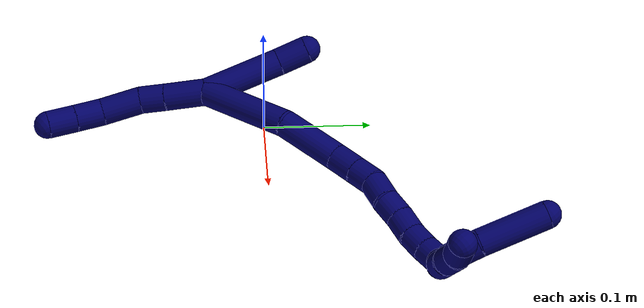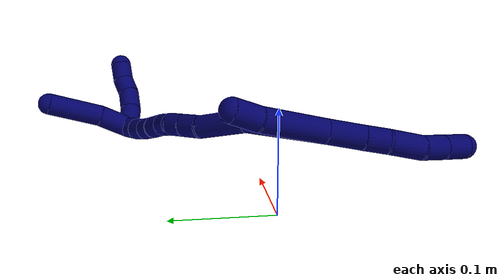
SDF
<sdf version="1.7">
 <world name="default">
  <model name="7">
   <static>0</static>
   <link name="7">
    <collision name="collision-cylinder-e_1_2_8">
     <pose>-0.010019 -0.007122 -0.014497 2.68492 -0.555221 -1.77337</pose>
     <geometry><cylinder><radius>0.0125</radius><length>0.038014</length></cylinder></geometry>
     <surface>
      <friction><ode><mu>1.16</mu><mu2>1.16</mu2><slip1>0</slip1><slip2>0</slip2></ode></friction>
      <contact><ode><kp>1e+06</kp><kd>1</kd><max_vel>0</max_vel><min_depth>0.001</min_depth></ode></contact>
     </surface>
    </collision>
    <visual name="visual-cylinder-e_1_2_8">
     <pose>-0.010019 -0.007122 -0.014497 2.68492 -0.555221 -1.77337</pose>
     <geometry><cylinder><radius>0.0125</radius><length>0.038014</length></cylinder></geometry>
     <material><ambient>0.003922 0 0.403922 1</ambient></material>
    </visual>
    <collision name="collision-cylinder-e_2_8_9">
     <pose>-0.026121 -0.018727 -0.037804 2.67095 -0.551611 -1.73589</pose>
     <geometry><cylinder><radius>0.0125</radius><length>0.023214</length></cylinder></geometry>
     <surface>
      <friction><ode><mu>1.16</mu><mu2>1.16</mu2><slip1>0</slip1><slip2>0</slip2></ode></friction>
      <contact><ode><kp>1e+06</kp><kd>1</kd><max_vel>0</max_vel><min_depth>0.001</min_depth></ode></contact>
     </surface>
    </collision>
    <visual name="visual-cylinder-e_2_8_9">
     <pose>-0.026121 -0.018727 -0.037804 2.67095 -0.551611 -1.73589</pose>
     <geometry><cylinder><radius>0.0125</radius><length>0.023214</length></cylinder></geometry>
     <material><ambient>0.003922 0 0.403922 1</ambient></material>
    </visual>
    <collision name="collision-cylinder-e_3_9_10">
     <pose>-0.038991 -0.02805 -0.063046 2.85514 -0.377252 -1.84761</pose>
     <geometry><cylinder><radius>0.0125</radius><length>0.03685</length></cylinder></geometry>
     <surface>
      <friction><ode><mu>1.16</mu><mu2>1.16</mu2><slip1>0</slip1><slip2>0</slip2></ode></friction>
      <contact><ode><kp>1e+06</kp><kd>1</kd><max_vel>0</max_vel><min_depth>0.001</min_depth></ode></contact>
     </surface>
    </collision>
    <visual name="visual-cylinder-e_3_9_10">
     <pose>-0.038991 -0.02805 -0.063046 2.85514 -0.377252 -1.84761</pose>
     <geometry><cylinder><radius>0.0125</radius><length>0.03685</length></cylinder></geometry>
     <material><ambient>0.003922 0 0.403922 1</ambient></material>
    </visual>
    <collision name="collision-cylinder-e_4_10_11">
     <pose>-0.048307 -0.037487 -0.091284 2.77028 -0.197003 -0.968694</pose>
     <geometry><cylinder><radius>0.0125</radius><length>0.025841</length></cylinder></geometry>
     <surface>
      <friction><ode><mu>1.16</mu><mu2>1.16</mu2><slip1>0</slip1><slip2>0</slip2></ode></friction>
      <contact><ode><kp>1e+06</kp><kd>1</kd><max_vel>0</max_vel><min_depth>0.001</min_depth></ode></contact>
     </surface>
    </collision>
    <visual name="visual-cylinder-e_4_10_11">
     <pose>-0.048307 -0.037487 -0.091284 2.77028 -0.197003 -0.968694</pose>
     <geometry><cylinder><radius>0.0125</radius><length>0.025841</length></cylinder></geometry>
     <material><ambient>0.003922 0 0.403922 1</ambient></material>
    </visual>
    <collision name="collision-cylinder-e_5_11_6">
     <pose>-0.05333 -0.046853 -0.11497 2.75989 -0.192417 -0.926513</pose>
     <geometry><cylinder><radius>0.0125</radius><length>0.026082</length></cylinder></geometry>
     <surface>
      <friction><ode><mu>1.16</mu><mu2>1.16</mu2><slip1>0</slip1><slip2>0</slip2></ode></friction>
      <contact><ode><kp>1e+06</kp><kd>1</kd><max_vel>0</max_vel><min_depth>0.001</min_depth></ode></contact>
     </surface>
    </collision>
    <visual name="visual-cylinder-e_5_11_6">
     <pose>-0.05333 -0.046853 -0.11497 2.75989 -0.192417 -0.926513</pose>
     <geometry><cylinder><radius>0.0125</radius><length>0.026082</length></cylinder></geometry>
     <material><ambient>0.003922 0 0.403922 1</ambient></material>
    </visual>
    <collision name="collision-cylinder-e_1_2_12">
     <pose>0.008997 0.007021 0.034021 -0.203508 0.25343 -0.026015</pose>
     <geometry><cylinder><radius>0.0125</radius><length>0.071767</length></cylinder></geometry>
     <surface>
      <friction><ode><mu>1.16</mu><mu2>1.16</mu2><slip1>0</slip1><slip2>0</slip2></ode></friction>
      <contact><ode><kp>1e+06</kp><kd>1</kd><max_vel>0</max_vel><min_depth>0.001</min_depth></ode></contact>
     </surface>
    </collision>
    <visual name="visual-cylinder-e_1_2_12">
     <pose>0.008997 0.007021 0.034021 -0.203508 0.25343 -0.026015</pose>
     <geometry><cylinder><radius>0.0125</radius><length>0.071767</length></cylinder></geometry>
     <material><ambient>0.003922 0 0.403922 1</ambient></material>
    </visual>
    <collision name="collision-cylinder-e_2_12_5">
     <pose>0.023485 0.015988 0.080899 -0.150237 0.399509 -0.030471</pose>
     <geometry><cylinder><radius>0.0125</radius><length>0.028233</length></cylinder></geometry>
     <surface>
      <friction><ode><mu>1.16</mu><mu2>1.16</mu2><slip1>0</slip1><slip2>0</slip2></ode></friction>
      <contact><ode><kp>1e+06</kp><kd>1</kd><max_vel>0</max_vel><min_depth>0.001</min_depth></ode></contact>
     </surface>
    </collision>
    <visual name="visual-cylinder-e_2_12_5">
     <pose>0.023485 0.015988 0.080899 -0.150237 0.399509 -0.030471</pose>
     <geometry><cylinder><radius>0.0125</radius><length>0.028233</length></cylinder></geometry>
     <material><ambient>0.003922 0 0.403922 1</ambient></material>
    </visual>
    <collision name="collision-cylinder-e_1_2_13">
     <pose>0.035063 0.02491 0.011499 -1.13833 0.906828 -0.604407</pose>
     <geometry><cylinder><radius>0.0125</radius><length>0.089042</length></cylinder></geometry>
     <surface>
      <friction><ode><mu>1.16</mu><mu2>1.16</mu2><slip1>0</slip1><slip2>0</slip2></ode></friction>
      <contact><ode><kp>1e+06</kp><kd>1</kd><max_vel>0</max_vel><min_depth>0.001</min_depth></ode></contact>
     </surface>
    </collision>
    <visual name="visual-cylinder-e_1_2_13">
     <pose>0.035063 0.02491 0.011499 -1.13833 0.906828 -0.604407</pose>
     <geometry><cylinder><radius>0.0125</radius><length>0.089042</length></cylinder></geometry>
     <material><ambient>0.003922 0 0.403922 1</ambient></material>
    </visual>
    <collision name="collision-cylinder-e_2_13_14">
     <pose>0.089219 0.071199 0.028093 -1.33683 0.715307 -0.573954</pose>
     <geometry><cylinder><radius>0.0125</radius><length>0.058226</length></cylinder></geometry>
     <surface>
      <friction><ode><mu>1.16</mu><mu2>1.16</mu2><slip1>0</slip1><slip2>0</slip2></ode></friction>
      <contact><ode><kp>1e+06</kp><kd>1</kd><max_vel>0</max_vel><min_depth>0.001</min_depth></ode></contact>
     </surface>
    </collision>
    <visual name="visual-cylinder-e_2_13_14">
     <pose>0.089219 0.071199 0.028093 -1.33683 0.715307 -0.573954</pose>
     <geometry><cylinder><radius>0.0125</radius><length>0.058226</length></cylinder></geometry>
     <material><ambient>0.003922 0 0.403922 1</ambient></material>
    </visual>
    <collision name="collision-cylinder-e_3_14_15">
     <pose>0.118464 0.100213 0.034044 -1.45917 0.922863 -0.836723</pose>
     <geometry><cylinder><radius>0.0125</radius><length>0.025463</length></cylinder></geometry>
     <surface>
      <friction><ode><mu>1.16</mu><mu2>1.16</mu2><slip1>0</slip1><slip2>0</slip2></ode></friction>
      <contact><ode><kp>1e+06</kp><kd>1</kd><max_vel>0</max_vel><min_depth>0.001</min_depth></ode></contact>
     </surface>
    </collision>
    <visual name="visual-cylinder-e_3_14_15">
     <pose>0.118464 0.100213 0.034044 -1.45917 0.922863 -0.836723</pose>
     <geometry><cylinder><radius>0.0125</radius><length>0.025463</length></cylinder></geometry>
     <material><ambient>0.003922 0 0.403922 1</ambient></material>
    </visual>
    <collision name="collision-cylinder-e_4_15_16">
     <pose>0.13698 0.114129 0.035614 -1.45747 0.92373 -0.836264</pose>
     <geometry><cylinder><radius>0.0125</radius><length>0.020967</length></cylinder></geometry>
     <surface>
      <friction><ode><mu>1.16</mu><mu2>1.16</mu2><slip1>0</slip1><slip2>0</slip2></ode></friction>
      <contact><ode><kp>1e+06</kp><kd>1</kd><max_vel>0</max_vel><min_depth>0.001</min_depth></ode></contact>
     </surface>
    </collision>
    <visual name="visual-cylinder-e_4_15_16">
     <pose>0.13698 0.114129 0.035614 -1.45747 0.92373 -0.836264</pose>
     <geometry><cylinder><radius>0.0125</radius><length>0.020967</length></cylinder></geometry>
     <material><ambient>0.003922 0 0.403922 1</ambient></material>
    </visual>
    <collision name="collision-cylinder-e_5_16_17">
     <pose>0.154294 0.12768 0.033215 -1.97541 0.846924 -1.19892</pose>
     <geometry><cylinder><radius>0.0125</radius><length>0.02389</length></cylinder></geometry>
     <surface>
      <friction><ode><mu>1.16</mu><mu2>1.16</mu2><slip1>0</slip1><slip2>0</slip2></ode></friction>
      <contact><ode><kp>1e+06</kp><kd>1</kd><max_vel>0</max_vel><min_depth>0.001</min_depth></ode></contact>
     </surface>
    </collision>
    <visual name="visual-cylinder-e_5_16_17">
     <pose>0.154294 0.12768 0.033215 -1.97541 0.846924 -1.19892</pose>
     <geometry><cylinder><radius>0.0125</radius><length>0.02389</length></cylinder></geometry>
     <material><ambient>0.003922 0 0.403922 1</ambient></material>
    </visual>
    <collision name="collision-cylinder-e_6_17_18">
     <pose>0.169965 0.142376 0.028998 -1.71827 0.730396 -0.834607</pose>
     <geometry><cylinder><radius>0.0125</radius><length>0.020148</length></cylinder></geometry>
     <surface>
      <friction><ode><mu>1.16</mu><mu2>1.16</mu2><slip1>0</slip1><slip2>0</slip2></ode></friction>
      <contact><ode><kp>1e+06</kp><kd>1</kd><max_vel>0</max_vel><min_depth>0.001</min_depth></ode></contact>
     </surface>
    </collision>
    <visual name="visual-cylinder-e_6_17_18">
     <pose>0.169965 0.142376 0.028998 -1.71827 0.730396 -0.834607</pose>
     <geometry><cylinder><radius>0.0125</radius><length>0.020148</length></cylinder></geometry>
     <material><ambient>0.003922 0 0.403922 1</ambient></material>
    </visual>
    <collision name="collision-cylinder-e_7_18_19">
     <pose>0.184322 0.157069 0.025477 -1.8919 0.783703 -1.04055</pose>
     <geometry><cylinder><radius>0.0125</radius><length>0.021636</length></cylinder></geometry>
     <surface>
      <friction><ode><mu>1.16</mu><mu2>1.16</mu2><slip1>0</slip1><slip2>0</slip2></ode></friction>
      <contact><ode><kp>1e+06</kp><kd>1</kd><max_vel>0</max_vel><min_depth>0.001</min_depth></ode></contact>
     </surface>
    </collision>
    <visual name="visual-cylinder-e_7_18_19">
     <pose>0.184322 0.157069 0.025477 -1.8919 0.783703 -1.04055</pose>
     <geometry><cylinder><radius>0.0125</radius><length>0.021636</length></cylinder></geometry>
     <material><ambient>0.003922 0 0.403922 1</ambient></material>
    </visual>
    <collision name="collision-cylinder-e_8_19_20">
     <pose>0.19981 0.170791 0.022111 -1.71656 0.877778 -0.995475</pose>
     <geometry><cylinder><radius>0.0125</radius><length>0.02041</length></cylinder></geometry>
     <surface>
      <friction><ode><mu>1.16</mu><mu2>1.16</mu2><slip1>0</slip1><slip2>0</slip2></ode></friction>
      <contact><ode><kp>1e+06</kp><kd>1</kd><max_vel>0</max_vel><min_depth>0.001</min_depth></ode></contact>
     </surface>
    </collision>
    <visual name="visual-cylinder-e_8_19_20">
     <pose>0.19981 0.170791 0.022111 -1.71656 0.877778 -0.995475</pose>
     <geometry><cylinder><radius>0.0125</radius><length>0.02041</length></cylinder></geometry>
     <material><ambient>0.003922 0 0.403922 1</ambient></material>
    </visual>
    <collision name="collision-cylinder-e_9_20_1">
     <pose>0.216086 0.182783 0.02046 -1.69716 0.985299 -1.09447</pose>
     <geometry><cylinder><radius>0.0125</radius><length>0.020217</length></cylinder></geometry>
     <surface>
      <friction><ode><mu>1.16</mu><mu2>1.16</mu2><slip1>0</slip1><slip2>0</slip2></ode></friction>
      <contact><ode><kp>1e+06</kp><kd>1</kd><max_vel>0</max_vel><min_depth>0.001</min_depth></ode></contact>
     </surface>
    </collision>
    <visual name="visual-cylinder-e_9_20_1">
     <pose>0.216086 0.182783 0.02046 -1.69716 0.985299 -1.09447</pose>
     <geometry><cylinder><radius>0.0125</radius><length>0.020217</length></cylinder></geometry>
     <material><ambient>0.003922 0 0.403922 1</ambient></material>
    </visual>
    <collision name="collision-cylinder-e_1_1_21">
     <pose>0.233044 0.189583 0.036086 -0.076908 0.480322 -0.018842</pose>
     <geometry><cylinder><radius>0.0125</radius><length>0.036935</length></cylinder></geometry>
     <surface>
      <friction><ode><mu>1.16</mu><mu2>1.16</mu2><slip1>0</slip1><slip2>0</slip2></ode></friction>
      <contact><ode><kp>1e+06</kp><kd>1</kd><max_vel>0</max_vel><min_depth>0.001</min_depth></ode></contact>
     </surface>
    </collision>
    <visual name="visual-cylinder-e_1_1_21">
     <pose>0.233044 0.189583 0.036086 -0.076908 0.480322 -0.018842</pose>
     <geometry><cylinder><radius>0.0125</radius><length>0.036935</length></cylinder></geometry>
     <material><ambient>0.003922 0 0.403922 1</ambient></material>
    </visual>
    <collision name="collision-cylinder-e_2_21_4">
     <pose>0.252164 0.196422 0.081588 -0.189014 0.342416 -0.032775</pose>
     <geometry><cylinder><radius>0.0125</radius><length>0.063065</length></cylinder></geometry>
     <surface>
      <friction><ode><mu>1.16</mu><mu2>1.16</mu2><slip1>0</slip1><slip2>0</slip2></ode></friction>
      <contact><ode><kp>1e+06</kp><kd>1</kd><max_vel>0</max_vel><min_depth>0.001</min_depth></ode></contact>
     </surface>
    </collision>
    <visual name="visual-cylinder-e_2_21_4">
     <pose>0.252164 0.196422 0.081588 -0.189014 0.342416 -0.032775</pose>
     <geometry><cylinder><radius>0.0125</radius><length>0.063065</length></cylinder></geometry>
     <material><ambient>0.003922 0 0.403922 1</ambient></material>
    </visual>
    <collision name="collision-cylinder-e_1_1_22">
     <pose>0.23806 0.184276 0.014101 2.52034 1.09657 2.17374</pose>
     <geometry><cylinder><radius>0.0125</radius><length>0.03046</length></cylinder></geometry>
     <surface>
      <friction><ode><mu>1.16</mu><mu2>1.16</mu2><slip1>0</slip1><slip2>0</slip2></ode></friction>
      <contact><ode><kp>1e+06</kp><kd>1</kd><max_vel>0</max_vel><min_depth>0.001</min_depth></ode></contact>
     </surface>
    </collision>
    <visual name="visual-cylinder-e_1_1_22">
     <pose>0.23806 0.184276 0.014101 2.52034 1.09657 2.17374</pose>
     <geometry><cylinder><radius>0.0125</radius><length>0.03046</length></cylinder></geometry>
     <material><ambient>0.003922 0 0.403922 1</ambient></material>
    </visual>
    <collision name="collision-cylinder-e_2_22_23">
     <pose>0.264339 0.175963 0.006791 1.94097 1.22575 1.59761</pose>
     <geometry><cylinder><radius>0.0125</radius><length>0.027054</length></cylinder></geometry>
     <surface>
      <friction><ode><mu>1.16</mu><mu2>1.16</mu2><slip1>0</slip1><slip2>0</slip2></ode></friction>
      <contact><ode><kp>1e+06</kp><kd>1</kd><max_vel>0</max_vel><min_depth>0.001</min_depth></ode></contact>
     </surface>
    </collision>
    <visual name="visual-cylinder-e_2_22_23">
     <pose>0.264339 0.175963 0.006791 1.94097 1.22575 1.59761</pose>
     <geometry><cylinder><radius>0.0125</radius><length>0.027054</length></cylinder></geometry>
     <material><ambient>0.003922 0 0.403922 1</ambient></material>
    </visual>
    <collision name="collision-cylinder-e_3_23_24">
     <pose>0.286929 0.168914 0.00658 1.09218 1.26289 0.836465</pose>
     <geometry><cylinder><radius>0.0125</radius><length>0.020693</length></cylinder></geometry>
     <surface>
      <friction><ode><mu>1.16</mu><mu2>1.16</mu2><slip1>0</slip1><slip2>0</slip2></ode></friction>
      <contact><ode><kp>1e+06</kp><kd>1</kd><max_vel>0</max_vel><min_depth>0.001</min_depth></ode></contact>
     </surface>
    </collision>
    <visual name="visual-cylinder-e_3_23_24">
     <pose>0.286929 0.168914 0.00658 1.09218 1.26289 0.836465</pose>
     <geometry><cylinder><radius>0.0125</radius><length>0.020693</length></cylinder></geometry>
     <material><ambient>0.003922 0 0.403922 1</ambient></material>
    </visual>
    <collision name="collision-cylinder-e_4_24_3">
     <pose>0.30596 0.160366 0.009199 1.3696 1.00045 0.839655</pose>
     <geometry><cylinder><radius>0.0125</radius><length>0.021793</length></cylinder></geometry>
     <surface>
      <friction><ode><mu>1.16</mu><mu2>1.16</mu2><slip1>0</slip1><slip2>0</slip2></ode></friction>
      <contact><ode><kp>1e+06</kp><kd>1</kd><max_vel>0</max_vel><min_depth>0.001</min_depth></ode></contact>
     </surface>
    </collision>
    <visual name="visual-cylinder-e_4_24_3">
     <pose>0.30596 0.160366 0.009199 1.3696 1.00045 0.839655</pose>
     <geometry><cylinder><radius>0.0125</radius><length>0.021793</length></cylinder></geometry>
     <material><ambient>0.003922 0 0.403922 1</ambient></material>
    </visual>
    <collision name="collision-sphere-3">
     <pose>0.315132 0.154601 0.010375 0 -0 0</pose>
     <geometry><sphere><radius>0.0125</radius></sphere></geometry>
     <surface>
      <friction><ode><mu>1.16</mu><mu2>1.16</mu2><slip1>0</slip1><slip2>0</slip2></ode></friction>
      <contact><ode><kp>1e+06</kp><kd>1</kd><max_vel>0</max_vel><min_depth>0.001</min_depth></ode></contact>
     </surface>
    </collision>
    <visual name="visual-sphere-3">
     <pose>0.315132 0.154601 0.010375 0 -0 0</pose>
     <geometry><sphere><radius>0.0125</radius></sphere></geometry>
     <material><ambient>0.003922 0 0.403922 1</ambient></material>
    </visual>
    <collision name="collision-sphere-24">
     <pose>0.296789 0.16613 0.008024 0 -0 0</pose>
     <geometry><sphere><radius>0.0125</radius></sphere></geometry>
     <surface>
      <friction><ode><mu>1.16</mu><mu2>1.16</mu2><slip1>0</slip1><slip2>0</slip2></ode></friction>
      <contact><ode><kp>1e+06</kp><kd>1</kd><max_vel>0</max_vel><min_depth>0.001</min_depth></ode></contact>
     </surface>
    </collision>
    <visual name="visual-sphere-24">
     <pose>0.296789 0.16613 0.008024 0 -0 0</pose>
     <geometry><sphere><radius>0.0125</radius></sphere></geometry>
     <material><ambient>0.003922 0 0.403922 1</ambient></material>
    </visual>
    <collision name="collision-sphere-23">
     <pose>0.277069 0.171697 0.005135 0 -0 0</pose>
     <geometry><sphere><radius>0.0125</radius></sphere></geometry>
     <surface>
      <friction><ode><mu>1.16</mu><mu2>1.16</mu2><slip1>0</slip1><slip2>0</slip2></ode></friction>
      <contact><ode><kp>1e+06</kp><kd>1</kd><max_vel>0</max_vel><min_depth>0.001</min_depth></ode></contact>
     </surface>
    </collision>
    <visual name="visual-sphere-23">
     <pose>0.277069 0.171697 0.005135 0 -0 0</pose>
     <geometry><sphere><radius>0.0125</radius></sphere></geometry>
     <material><ambient>0.003922 0 0.403922 1</ambient></material>
    </visual>
    <collision name="collision-sphere-22">
     <pose>0.251609 0.180228 0.008446 0 -0 0</pose>
     <geometry><sphere><radius>0.0125</radius></sphere></geometry>
     <surface>
      <friction><ode><mu>1.16</mu><mu2>1.16</mu2><slip1>0</slip1><slip2>0</slip2></ode></friction>
      <contact><ode><kp>1e+06</kp><kd>1</kd><max_vel>0</max_vel><min_depth>0.001</min_depth></ode></contact>
     </surface>
    </collision>
    <visual name="visual-sphere-22">
     <pose>0.251609 0.180228 0.008446 0 -0 0</pose>
     <geometry><sphere><radius>0.0125</radius></sphere></geometry>
     <material><ambient>0.003922 0 0.403922 1</ambient></material>
    </visual>
    <collision name="collision-sphere-4">
     <pose>0.262752 0.202002 0.110761 0 -0 0</pose>
     <geometry><sphere><radius>0.0125</radius></sphere></geometry>
     <surface>
      <friction><ode><mu>1.16</mu><mu2>1.16</mu2><slip1>0</slip1><slip2>0</slip2></ode></friction>
      <contact><ode><kp>1e+06</kp><kd>1</kd><max_vel>0</max_vel><min_depth>0.001</min_depth></ode></contact>
     </surface>
    </collision>
    <visual name="visual-sphere-4">
     <pose>0.262752 0.202002 0.110761 0 -0 0</pose>
     <geometry><sphere><radius>0.0125</radius></sphere></geometry>
     <material><ambient>0.003922 0 0.403922 1</ambient></material>
    </visual>
    <collision name="collision-sphere-21">
     <pose>0.241577 0.190841 0.052415 0 -0 0</pose>
     <geometry><sphere><radius>0.0125</radius></sphere></geometry>
     <surface>
      <friction><ode><mu>1.16</mu><mu2>1.16</mu2><slip1>0</slip1><slip2>0</slip2></ode></friction>
      <contact><ode><kp>1e+06</kp><kd>1</kd><max_vel>0</max_vel><min_depth>0.001</min_depth></ode></contact>
     </surface>
    </collision>
    <visual name="visual-sphere-21">
     <pose>0.241577 0.190841 0.052415 0 -0 0</pose>
     <geometry><sphere><radius>0.0125</radius></sphere></geometry>
     <material><ambient>0.003922 0 0.403922 1</ambient></material>
    </visual>
    <collision name="collision-sphere-1">
     <pose>0.224511 0.188324 0.019756 0 -0 0</pose>
     <geometry><sphere><radius>0.0125</radius></sphere></geometry>
     <surface>
      <friction><ode><mu>1.16</mu><mu2>1.16</mu2><slip1>0</slip1><slip2>0</slip2></ode></friction>
      <contact><ode><kp>1e+06</kp><kd>1</kd><max_vel>0</max_vel><min_depth>0.001</min_depth></ode></contact>
     </surface>
    </collision>
    <visual name="visual-sphere-1">
     <pose>0.224511 0.188324 0.019756 0 -0 0</pose>
     <geometry><sphere><radius>0.0125</radius></sphere></geometry>
     <material><ambient>0.003922 0 0.403922 1</ambient></material>
    </visual>
    <collision name="collision-sphere-6">
     <pose>-0.055823 -0.051621 -0.126849 0 -0 0</pose>
     <geometry><sphere><radius>0.0125</radius></sphere></geometry>
     <surface>
      <friction><ode><mu>1.16</mu><mu2>1.16</mu2><slip1>0</slip1><slip2>0</slip2></ode></friction>
      <contact><ode><kp>1e+06</kp><kd>1</kd><max_vel>0</max_vel><min_depth>0.001</min_depth></ode></contact>
     </surface>
    </collision>
    <visual name="visual-sphere-6">
     <pose>-0.055823 -0.051621 -0.126849 0 -0 0</pose>
     <geometry><sphere><radius>0.0125</radius></sphere></geometry>
     <material><ambient>0.003922 0 0.403922 1</ambient></material>
    </visual>
    <collision name="collision-sphere-11">
     <pose>-0.050836 -0.042084 -0.103091 0 -0 0</pose>
     <geometry><sphere><radius>0.0125</radius></sphere></geometry>
     <surface>
      <friction><ode><mu>1.16</mu><mu2>1.16</mu2><slip1>0</slip1><slip2>0</slip2></ode></friction>
      <contact><ode><kp>1e+06</kp><kd>1</kd><max_vel>0</max_vel><min_depth>0.001</min_depth></ode></contact>
     </surface>
    </collision>
    <visual name="visual-sphere-11">
     <pose>-0.050836 -0.042084 -0.103091 0 -0 0</pose>
     <geometry><sphere><radius>0.0125</radius></sphere></geometry>
     <material><ambient>0.003922 0 0.403922 1</ambient></material>
    </visual>
    <collision name="collision-sphere-10">
     <pose>-0.045778 -0.03289 -0.079477 0 -0 0</pose>
     <geometry><sphere><radius>0.0125</radius></sphere></geometry>
     <surface>
      <friction><ode><mu>1.16</mu><mu2>1.16</mu2><slip1>0</slip1><slip2>0</slip2></ode></friction>
      <contact><ode><kp>1e+06</kp><kd>1</kd><max_vel>0</max_vel><min_depth>0.001</min_depth></ode></contact>
     </surface>
    </collision>
    <visual name="visual-sphere-10">
     <pose>-0.045778 -0.03289 -0.079477 0 -0 0</pose>
     <geometry><sphere><radius>0.0125</radius></sphere></geometry>
     <material><ambient>0.003922 0 0.403922 1</ambient></material>
    </visual>
    <collision name="collision-sphere-9">
     <pose>-0.032204 -0.02321 -0.046614 0 -0 0</pose>
     <geometry><sphere><radius>0.0125</radius></sphere></geometry>
     <surface>
      <friction><ode><mu>1.16</mu><mu2>1.16</mu2><slip1>0</slip1><slip2>0</slip2></ode></friction>
      <contact><ode><kp>1e+06</kp><kd>1</kd><max_vel>0</max_vel><min_depth>0.001</min_depth></ode></contact>
     </surface>
    </collision>
    <visual name="visual-sphere-9">
     <pose>-0.032204 -0.02321 -0.046614 0 -0 0</pose>
     <geometry><sphere><radius>0.0125</radius></sphere></geometry>
     <material><ambient>0.003922 0 0.403922 1</ambient></material>
    </visual>
    <collision name="collision-sphere-2">
     <geometry><sphere><radius>0.0125</radius></sphere></geometry>
     <surface>
      <friction><ode><mu>1.16</mu><mu2>1.16</mu2><slip1>0</slip1><slip2>0</slip2></ode></friction>
      <contact><ode><kp>1e+06</kp><kd>1</kd><max_vel>0</max_vel><min_depth>0.001</min_depth></ode></contact>
     </surface>
    </collision>
    <visual name="visual-sphere-2">
     <geometry><sphere><radius>0.0125</radius></sphere></geometry>
     <material><ambient>0.003922 0 0.403922 1</ambient></material>
    </visual>
    <collision name="collision-sphere-19">
     <pose>0.191959 0.16434 0.023058 0 -0 0</pose>
     <geometry><sphere><radius>0.0125</radius></sphere></geometry>
     <surface>
      <friction><ode><mu>1.16</mu><mu2>1.16</mu2><slip1>0</slip1><slip2>0</slip2></ode></friction>
      <contact><ode><kp>1e+06</kp><kd>1</kd><max_vel>0</max_vel><min_depth>0.001</min_depth></ode></contact>
     </surface>
    </collision>
    <visual name="visual-sphere-19">
     <pose>0.191959 0.16434 0.023058 0 -0 0</pose>
     <geometry><sphere><radius>0.0125</radius></sphere></geometry>
     <material><ambient>0.003922 0 0.403922 1</ambient></material>
    </visual>
    <collision name="collision-sphere-8">
     <pose>-0.020038 -0.014245 -0.028993 0 -0 0</pose>
     <geometry><sphere><radius>0.0125</radius></sphere></geometry>
     <surface>
      <friction><ode><mu>1.16</mu><mu2>1.16</mu2><slip1>0</slip1><slip2>0</slip2></ode></friction>
      <contact><ode><kp>1e+06</kp><kd>1</kd><max_vel>0</max_vel><min_depth>0.001</min_depth></ode></contact>
     </surface>
    </collision>
    <visual name="visual-sphere-8">
     <pose>-0.020038 -0.014245 -0.028993 0 -0 0</pose>
     <geometry><sphere><radius>0.0125</radius></sphere></geometry>
     <material><ambient>0.003922 0 0.403922 1</ambient></material>
    </visual>
    <collision name="collision-sphere-12">
     <pose>0.017994 0.014041 0.068041 0 -0 0</pose>
     <geometry><sphere><radius>0.0125</radius></sphere></geometry>
     <surface>
      <friction><ode><mu>1.16</mu><mu2>1.16</mu2><slip1>0</slip1><slip2>0</slip2></ode></friction>
      <contact><ode><kp>1e+06</kp><kd>1</kd><max_vel>0</max_vel><min_depth>0.001</min_depth></ode></contact>
     </surface>
    </collision>
    <visual name="visual-sphere-12">
     <pose>0.017994 0.014041 0.068041 0 -0 0</pose>
     <geometry><sphere><radius>0.0125</radius></sphere></geometry>
     <material><ambient>0.003922 0 0.403922 1</ambient></material>
    </visual>
    <collision name="collision-sphere-5">
     <pose>0.028975 0.017934 0.093758 0 -0 0</pose>
     <geometry><sphere><radius>0.0125</radius></sphere></geometry>
     <surface>
      <friction><ode><mu>1.16</mu><mu2>1.16</mu2><slip1>0</slip1><slip2>0</slip2></ode></friction>
      <contact><ode><kp>1e+06</kp><kd>1</kd><max_vel>0</max_vel><min_depth>0.001</min_depth></ode></contact>
     </surface>
    </collision>
    <visual name="visual-sphere-5">
     <pose>0.028975 0.017934 0.093758 0 -0 0</pose>
     <geometry><sphere><radius>0.0125</radius></sphere></geometry>
     <material><ambient>0.003922 0 0.403922 1</ambient></material>
    </visual>
    <collision name="collision-sphere-13">
     <pose>0.070125 0.04982 0.022998 0 -0 0</pose>
     <geometry><sphere><radius>0.0125</radius></sphere></geometry>
     <surface>
      <friction><ode><mu>1.16</mu><mu2>1.16</mu2><slip1>0</slip1><slip2>0</slip2></ode></friction>
      <contact><ode><kp>1e+06</kp><kd>1</kd><max_vel>0</max_vel><min_depth>0.001</min_depth></ode></contact>
     </surface>
    </collision>
    <visual name="visual-sphere-13">
     <pose>0.070125 0.04982 0.022998 0 -0 0</pose>
     <geometry><sphere><radius>0.0125</radius></sphere></geometry>
     <material><ambient>0.003922 0 0.403922 1</ambient></material>
    </visual>
    <collision name="collision-sphere-14">
     <pose>0.108313 0.092577 0.033188 0 -0 0</pose>
     <geometry><sphere><radius>0.0125</radius></sphere></geometry>
     <surface>
      <friction><ode><mu>1.16</mu><mu2>1.16</mu2><slip1>0</slip1><slip2>0</slip2></ode></friction>
      <contact><ode><kp>1e+06</kp><kd>1</kd><max_vel>0</max_vel><min_depth>0.001</min_depth></ode></contact>
     </surface>
    </collision>
    <visual name="visual-sphere-14">
     <pose>0.108313 0.092577 0.033188 0 -0 0</pose>
     <geometry><sphere><radius>0.0125</radius></sphere></geometry>
     <material><ambient>0.003922 0 0.403922 1</ambient></material>
    </visual>
    <collision name="collision-sphere-15">
     <pose>0.128616 0.107849 0.0349 0 -0 0</pose>
     <geometry><sphere><radius>0.0125</radius></sphere></geometry>
     <surface>
      <friction><ode><mu>1.16</mu><mu2>1.16</mu2><slip1>0</slip1><slip2>0</slip2></ode></friction>
      <contact><ode><kp>1e+06</kp><kd>1</kd><max_vel>0</max_vel><min_depth>0.001</min_depth></ode></contact>
     </surface>
    </collision>
    <visual name="visual-sphere-15">
     <pose>0.128616 0.107849 0.0349 0 -0 0</pose>
     <geometry><sphere><radius>0.0125</radius></sphere></geometry>
     <material><ambient>0.003922 0 0.403922 1</ambient></material>
    </visual>
    <collision name="collision-sphere-16">
     <pose>0.145344 0.120408 0.036329 0 -0 0</pose>
     <geometry><sphere><radius>0.0125</radius></sphere></geometry>
     <surface>
      <friction><ode><mu>1.16</mu><mu2>1.16</mu2><slip1>0</slip1><slip2>0</slip2></ode></friction>
      <contact><ode><kp>1e+06</kp><kd>1</kd><max_vel>0</max_vel><min_depth>0.001</min_depth></ode></contact>
     </surface>
    </collision>
    <visual name="visual-sphere-16">
     <pose>0.145344 0.120408 0.036329 0 -0 0</pose>
     <geometry><sphere><radius>0.0125</radius></sphere></geometry>
     <material><ambient>0.003922 0 0.403922 1</ambient></material>
    </visual>
    <collision name="collision-sphere-17">
     <pose>0.163244 0.134953 0.0301 0 -0 0</pose>
     <geometry><sphere><radius>0.0125</radius></sphere></geometry>
     <surface>
      <friction><ode><mu>1.16</mu><mu2>1.16</mu2><slip1>0</slip1><slip2>0</slip2></ode></friction>
      <contact><ode><kp>1e+06</kp><kd>1</kd><max_vel>0</max_vel><min_depth>0.001</min_depth></ode></contact>
     </surface>
    </collision>
    <visual name="visual-sphere-17">
     <pose>0.163244 0.134953 0.0301 0 -0 0</pose>
     <geometry><sphere><radius>0.0125</radius></sphere></geometry>
     <material><ambient>0.003922 0 0.403922 1</ambient></material>
    </visual>
    <collision name="collision-sphere-18">
     <pose>0.176686 0.149798 0.027895 0 -0 0</pose>
     <geometry><sphere><radius>0.0125</radius></sphere></geometry>
     <surface>
      <friction><ode><mu>1.16</mu><mu2>1.16</mu2><slip1>0</slip1><slip2>0</slip2></ode></friction>
      <contact><ode><kp>1e+06</kp><kd>1</kd><max_vel>0</max_vel><min_depth>0.001</min_depth></ode></contact>
     </surface>
    </collision>
    <visual name="visual-sphere-18">
     <pose>0.176686 0.149798 0.027895 0 -0 0</pose>
     <geometry><sphere><radius>0.0125</radius></sphere></geometry>
     <material><ambient>0.003922 0 0.403922 1</ambient></material>
    </visual>
    <collision name="collision-sphere-20">
     <pose>0.207661 0.177241 0.021164 0 -0 0</pose>
     <geometry><sphere><radius>0.0125</radius></sphere></geometry>
     <surface>
      <friction><ode><mu>1.16</mu><mu2>1.16</mu2><slip1>0</slip1><slip2>0</slip2></ode></friction>
      <contact><ode><kp>1e+06</kp><kd>1</kd><max_vel>0</max_vel><min_depth>0.001</min_depth></ode></contact>
     </surface>
    </collision>
    <visual name="visual-sphere-20">
     <pose>0.207661 0.177241 0.021164 0 -0 0</pose>
     <geometry><sphere><radius>0.0125</radius></sphere></geometry>
     <material><ambient>0.003922 0 0.403922 1</ambient></material>
    </visual>
    <inertial>
     <pose>0.108686 0.082114 0.013482 0 -0 0</pose>
     <mass>0.75</mass>
     <inertia><ixx>8.6e-05</ixx><ixy>0</ixy><ixz>0</ixz><iyy>0.0001</iyy><iyz>0</iyz><izz>-0.000145</izz></inertia>
    </inertial>
   </link>
   <pose>0.041532 -0.053792 0.065617 -1.19426 -0.470771 0.426235</pose>
  </model>
 </world>
</sdf>
